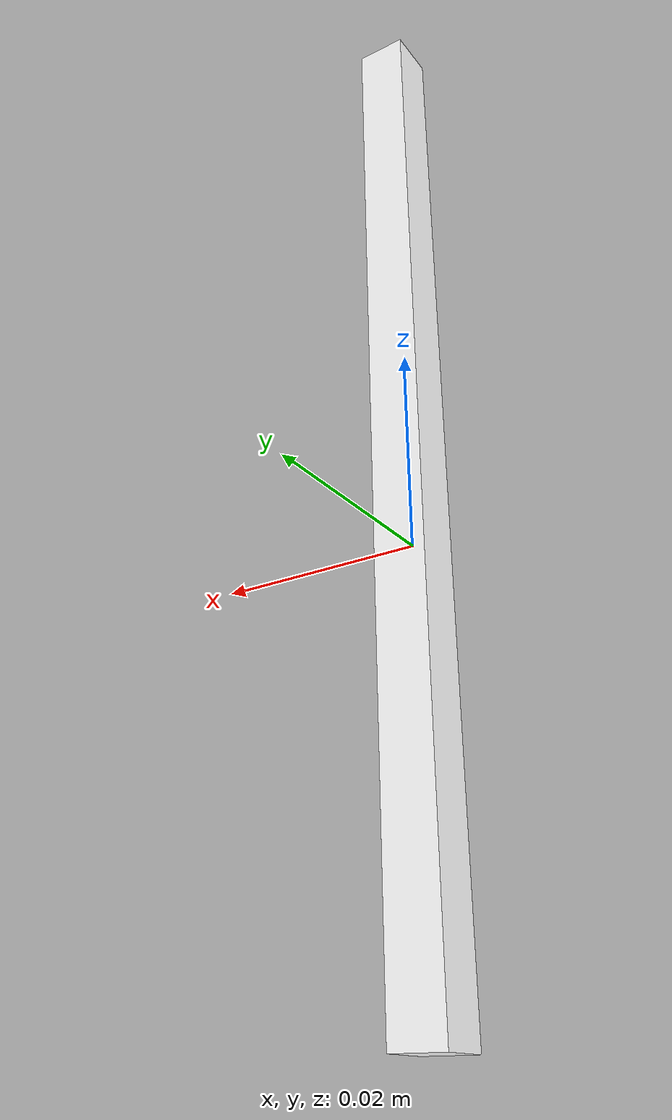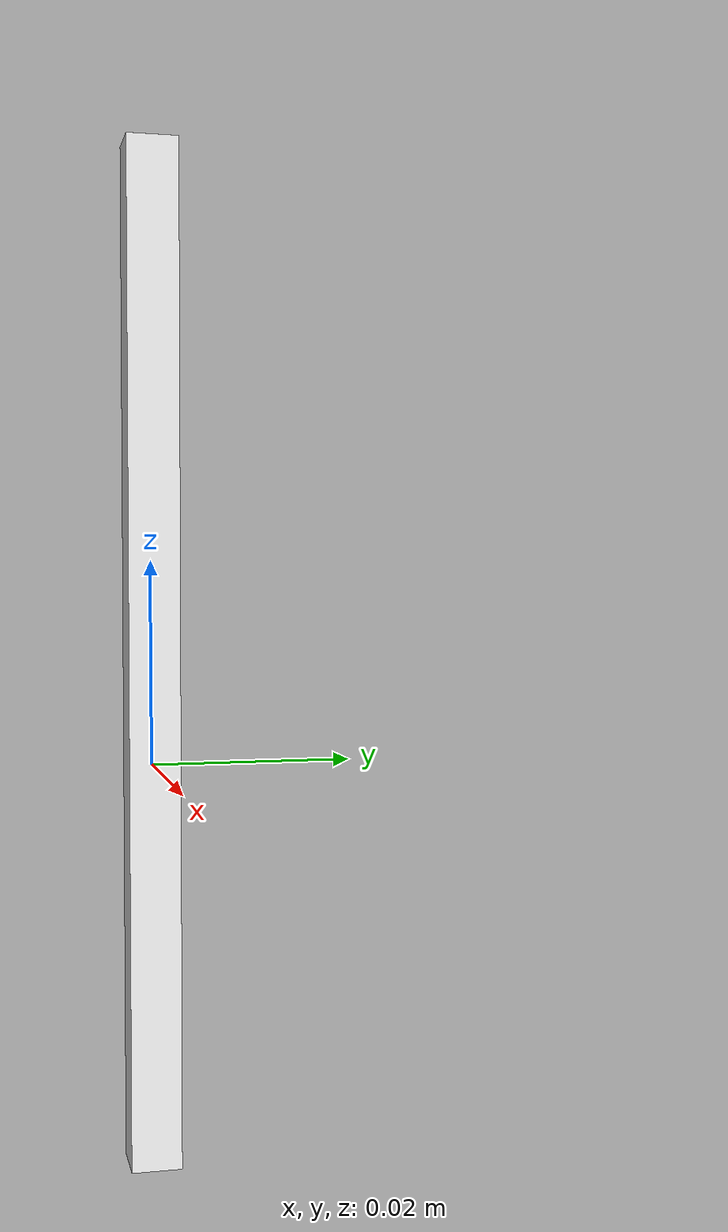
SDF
<?xml version='1.0'?>
<sdf version='1.6'>
  <model name='5mm_x_100mm_bar'>
    <link name='link'>
      <pose frame=''>-0 0 0.01 0 -0 0</pose>
      <inertial>
        <mass>0.01</mass>
        <inertia>
          <ixx>0.001</ixx>
          <ixy>0</ixy>
          <ixz>0</ixz>
          <iyy>0.001</iyy>
          <iyz>0</iyz>
          <izz>0.001</izz>
        </inertia>
        <pose frame=''>0 0 0 0 -0 0</pose>
      </inertial>
      <self_collide>0</self_collide>
      <kinematic>0</kinematic>
      <gravity>1</gravity>
      <visual name='visual'>
        <geometry>
          <box>
            <size>0.005 0.005 0.1</size>
          </box>
        </geometry>
        <pose frame=''>0 0 0 0 -0 0</pose>
        <cast_shadows>1</cast_shadows>
        <transparency>0</transparency>
        <material>
          <ambient>0 1 0 0</ambient>
          <diffuse>1 1 1 1</diffuse>
          <specular>0 0 0 1</specular>
          <emissive>0 0 0 1</emissive>
          <script>
            <name>ModelPreview_2::link::visual_MATERIAL_</name>
          </script>
          <shader type='vertex'>
            <normal_map>__default__</normal_map>
          </shader>
        </material>
      </visual>
      <collision name='collision'>
        <laser_retro>0</laser_retro>
        <max_contacts>10</max_contacts>
        <pose frame=''>0 0 0 0 -0 0</pose>
        <geometry>
          <box>
            <size>0.005 0.005 0.1</size>
          </box>
        </geometry>
        <surface>
          <friction>
            <ode>
              <mu>50</mu>
              <mu2>50</mu2>
              <fdir1>0 0 0</fdir1>
              <slip1>0</slip1>
              <slip2>0</slip2>
            </ode>
            <torsional>
              <coefficient>1</coefficient>
              <patch_radius>0</patch_radius>
              <surface_radius>0</surface_radius>
              <use_patch_radius>1</use_patch_radius>
              <ode>
                <slip>0</slip>
              </ode>
            </torsional>
          </friction>
          <bounce>
            <restitution_coefficient>0</restitution_coefficient>
            <threshold>1e+06</threshold>
          </bounce>
          <contact>
            <collide_without_contact>0</collide_without_contact>
            <collide_without_contact_bitmask>1</collide_without_contact_bitmask>
            <collide_bitmask>1</collide_bitmask>
            <ode>
              <soft_cfm>0</soft_cfm>
              <soft_erp>0.2</soft_erp>
              <kp>1e+06</kp>
              <kd>100</kd>
              <max_vel>1</max_vel>
              <min_depth>0.0005</min_depth>
            </ode>
            <bullet>
              <split_impulse>1</split_impulse>
              <split_impulse_penetration_threshold>-0.01</split_impulse_penetration_threshold>
              <soft_cfm>0</soft_cfm>
              <soft_erp>0.2</soft_erp>
              <kp>1e+06</kp>
              <kd>100</kd>
            </bullet>
          </contact>
        </surface>
      </collision>
    </link>
    <static>1</static>
    <allow_auto_disable>1</allow_auto_disable>
  </model>
</sdf>
